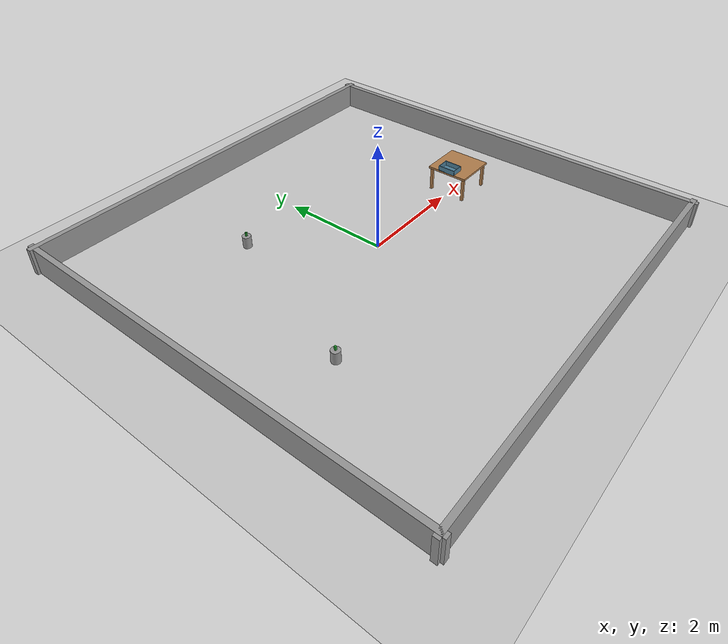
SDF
<?xml version="1.0" ?>
<sdf version="1.7">
  <world name="mobiarm_world">

    <!-- Standard lighting and ground -->
    <include>
      <uri>model://sun</uri>
    </include>
    <include>
      <uri>model://ground_plane</uri>
    </include>

    <!-- Default ODE physics (explicit so timestep matches ros2_control) -->
    <physics name="default_physics" type="ode">
      <max_step_size>0.001</max_step_size>
      <real_time_factor>1.0</real_time_factor>
      <real_time_update_rate>1000</real_time_update_rate>
      <ode>
        <solver>
          <type>quick</type>
          <iters>100</iters>          <!-- default ~20-50; this is the #1 fix for jitter -->
          <sor>1.3</sor>
        </solver>
        <constraints>
          <cfm>0.0</cfm>
          <erp>0.2</erp>
          <contact_max_correcting_vel>100.0</contact_max_correcting_vel>
          <contact_surface_layer>0.001</contact_surface_layer>
        </constraints>
      </ode>
    </physics>

    <plugin name="gazebo_link_attacher" filename="libgazebo_link_attacher.so"/>

    <!-- ================= Simple table =================
         Static model at x=1.0 (1 m in front of the robot). One link with a
         tabletop (top surface at z=0.50) and four legs. -->
    <model name="table">
      <static>true</static>
      <pose>2.5 0 0 0 0 0</pose>
      <link name="link">

        <!-- tabletop: 0.8 x 0.8 x 0.04, centred so its top face is at z=0.50 -->
        <collision name="top_col">
          <pose>0 0 0.48 0 0 0</pose>
          <geometry><box><size>0.8 0.8 0.04</size></box></geometry>
        </collision>
        <visual name="top_vis">
          <pose>0 0 0.48 0 0 0</pose>
          <geometry><box><size>0.8 0.8 0.04</size></box></geometry>
          <material>
            <script>
              <uri>file://media/materials/scripts/gazebo.material</uri>
              <name>Gazebo/Wood</name>
            </script>
          </material>
        </visual>

        <!-- four legs: 0.05 x 0.05 x 0.46, from the floor up to the tabletop -->
        <collision name="leg1_col">
          <pose> 0.35  0.35 0.23 0 0 0</pose>
          <geometry><box><size>0.05 0.05 0.46</size></box></geometry>
        </collision>
        <visual name="leg1_vis">
          <pose> 0.35  0.35 0.23 0 0 0</pose>
          <geometry><box><size>0.05 0.05 0.46</size></box></geometry>
          <material><script><uri>file://media/materials/scripts/gazebo.material</uri><name>Gazebo/Wood</name></script></material>
        </visual>

        <collision name="leg2_col">
          <pose> 0.35 -0.35 0.23 0 0 0</pose>
          <geometry><box><size>0.05 0.05 0.46</size></box></geometry>
        </collision>
        <visual name="leg2_vis">
          <pose> 0.35 -0.35 0.23 0 0 0</pose>
          <geometry><box><size>0.05 0.05 0.46</size></box></geometry>
          <material><script><uri>file://media/materials/scripts/gazebo.material</uri><name>Gazebo/Wood</name></script></material>
        </visual>

        <collision name="leg3_col">
          <pose>-0.35  0.35 0.23 0 0 0</pose>
          <geometry><box><size>0.05 0.05 0.46</size></box></geometry>
        </collision>
        <visual name="leg3_vis">
          <pose>-0.35  0.35 0.23 0 0 0</pose>
          <geometry><box><size>0.05 0.05 0.46</size></box></geometry>
          <material><script><uri>file://media/materials/scripts/gazebo.material</uri><name>Gazebo/Wood</name></script></material>
        </visual>

        <collision name="leg4_col">
          <pose>-0.35 -0.35 0.23 0 0 0</pose>
          <geometry><box><size>0.05 0.05 0.46</size></box></geometry>
        </collision>
        <visual name="leg4_vis">
          <pose>-0.35 -0.35 0.23 0 0 0</pose>
          <geometry><box><size>0.05 0.05 0.46</size></box></geometry>
          <material><script><uri>file://media/materials/scripts/gazebo.material</uri><name>Gazebo/Wood</name></script></material>
        </visual>

      </link>
    </model>

    <model name="bin">
      <static>true</static>
      <pose>2.21 0 0.5 0 0 0</pose>
      <link name="link">
        <!-- floor -->
        <collision name="floor_col">
          <pose>0 0 0.005 0 0 0</pose>
          <geometry><box><size>0.24 0.34 0.01</size></box></geometry>
        </collision>
        <visual name="floor_vis">
          <pose>0 0 0.005 0 0 0</pose>
          <geometry><box><size>0.24 0.34 0.01</size></box></geometry>
          <material><ambient>0.2 0.4 0.5 1</ambient><diffuse>0.3 0.5 0.6 1</diffuse></material>
        </visual>
        <!-- +x wall -->
        <collision name="wall_px_col">
          <pose>0.115 0 0.05 0 0 0</pose>
          <geometry><box><size>0.01 0.34 0.1</size></box></geometry>
        </collision>
        <visual name="wall_px_vis">
          <pose>0.115 0 0.05 0 0 0</pose>
          <geometry><box><size>0.01 0.34 0.1</size></box></geometry>
          <material><ambient>0.2 0.4 0.5 1</ambient><diffuse>0.3 0.5 0.6 1</diffuse></material>
        </visual>
        <!-- -x wall -->
        <collision name="wall_nx_col">
          <pose>-0.115 0 0.05 0 0 0</pose>
          <geometry><box><size>0.01 0.34 0.1</size></box></geometry>
        </collision>
        <visual name="wall_nx_vis">
          <pose>-0.115 0 0.05 0 0 0</pose>
          <geometry><box><size>0.01 0.34 0.1</size></box></geometry>
          <material><ambient>0.2 0.4 0.5 1</ambient><diffuse>0.3 0.5 0.6 1</diffuse></material>
        </visual>
        <!-- +y wall -->
        <collision name="wall_py_col">
          <pose>0 0.165 0.05 0 0 0</pose>
          <geometry><box><size>0.24 0.01 0.1</size></box></geometry>
        </collision>
        <visual name="wall_py_vis">
          <pose>0 0.165 0.05 0 0 0</pose>
          <geometry><box><size>0.24 0.01 0.1</size></box></geometry>
          <material><ambient>0.2 0.4 0.5 1</ambient><diffuse>0.3 0.5 0.6 1</diffuse></material>
        </visual>
        <!-- -y wall -->
        <collision name="wall_ny_col">
          <pose>0 -0.165 0.05 0 0 0</pose>
          <geometry><box><size>0.24 0.01 0.1</size></box></geometry>
        </collision>
        <visual name="wall_ny_vis">
          <pose>0 -0.165 0.05 0 0 0</pose>
          <geometry><box><size>0.24 0.01 0.1</size></box></geometry>
          <material><ambient>0.2 0.4 0.5 1</ambient><diffuse>0.3 0.5 0.6 1</diffuse></material>
        </visual>
      </link>
    </model>

    <model name="cube_stand">
      <static>true</static>
      <pose>-2.5 -1.2 0 0 0 0</pose>
      <link name="link">
        <collision name="stool_col">
          <pose>0 0 0.1125 0 0 0</pose>
          <geometry><cylinder><radius>0.08</radius><length>0.225</length></cylinder></geometry>
        </collision>
        <visual name="stool_vis">
          <pose>0 0 0.1125 0 0 0</pose>
          <geometry><cylinder><radius>0.08</radius><length>0.225</length></cylinder></geometry>
          <material><script><uri>file://media/materials/scripts/gazebo.material</uri><name>Gazebo/Grey</name></script></material>
        </visual>
      </link>
    </model>

     <model name="cube_stand2">
      <static>true</static>
      <pose>-1.4 1.8 0 0 0 0</pose>
      <link name="link">
        <collision name="stool_col">
          <pose>0 0 0.1125 0 0 0</pose>
          <geometry><cylinder><radius>0.08</radius><length>0.225</length></cylinder></geometry>
        </collision>
        <visual name="stool_vis">
          <pose>0 0 0.1125 0 0 0</pose>
          <geometry><cylinder><radius>0.08</radius><length>0.225</length></cylinder></geometry>
          <material><script><uri>file://media/materials/scripts/gazebo.material</uri><name>Gazebo/Grey</name></script></material>
        </visual>
      </link>
    </model>

    <model name="green_cube_1">
      <static>false</static>
      <pose>-1.4 1.8 0.24 0 0 0</pose>
      <link name="link">
        <inertial>
          <mass>0.05</mass>
          <inertia>
            <ixx>7.5e-6</ixx><iyy>7.5e-6</iyy><izz>7.5e-6</izz>
            <ixy>0</ixy><ixz>0</ixz><iyz>0</iyz>
          </inertia>
        </inertial>
        <collision name="cube_col">
          <geometry><box><size>0.03 0.03 0.12</size></box></geometry>
        </collision>
        <visual name="cube_vis">
          <geometry><box><size>0.03 0.03 0.12</size></box></geometry>
          <material><script><uri>file://media/materials/scripts/gazebo.material</uri><name>Gazebo/Green</name></script></material>
        </visual>
      </link>
    </model>

    <model name="green_cube_2">
      <static>false</static>
      <pose>-2.5 -1.2 0.24 0 0 0</pose>
      <link name="link">
        <inertial>
          <mass>0.05</mass>
          <inertia>
            <ixx>7.5e-6</ixx><iyy>7.5e-6</iyy><izz>7.5e-6</izz>
            <ixy>0</ixy><ixz>0</ixz><iyz>0</iyz>
          </inertia>
        </inertial>
        <collision name="cube_col">
          <geometry><box><size>0.03 0.03 0.12</size></box></geometry>
        </collision>
        <visual name="cube_vis">
          <geometry><box><size>0.03 0.03 0.12</size></box></geometry>
          <material><script><uri>file://media/materials/scripts/gazebo.material</uri><name>Gazebo/Green</name></script></material>
        </visual>
      </link>
    </model>

    <model name="walls">
      <static>true</static>
      <pose>0 0 0 0 0 0</pose>
      <link name="link">
        <!-- north (+y) and south (-y): run along x -->
        <collision name="north_col"><pose>0  4 0.25 0 0 0</pose><geometry><box><size>8.2 0.1 0.5</size></box></geometry></collision>
        <visual    name="north_vis"><pose>0  4 0.25 0 0 0</pose><geometry><box><size>8.2 0.1 0.5</size></box></geometry>
          <material><script><uri>file://media/materials/scripts/gazebo.material</uri><name>Gazebo/Grey</name></script></material></visual>

        <collision name="south_col"><pose>0 -4 0.25 0 0 0</pose><geometry><box><size>8.2 0.1 0.5</size></box></geometry></collision>
        <visual    name="south_vis"><pose>0 -4 0.25 0 0 0</pose><geometry><box><size>8.2 0.1 0.5</size></box></geometry>
          <material><script><uri>file://media/materials/scripts/gazebo.material</uri><name>Gazebo/Grey</name></script></material></visual>

        <!-- east (+x) and west (-x): run along y -->
        <collision name="east_col"><pose> 4 0 0.25 0 0 0</pose><geometry><box><size>0.1 8.2 0.5</size></box></geometry></collision>
        <visual    name="east_vis"><pose> 4 0 0.25 0 0 0</pose><geometry><box><size>0.1 8.2 0.5</size></box></geometry>
          <material><script><uri>file://media/materials/scripts/gazebo.material</uri><name>Gazebo/Grey</name></script></material></visual>

        <collision name="west_col"><pose>-4 0 0.25 0 0 0</pose><geometry><box><size>0.1 8.2 0.5</size></box></geometry></collision>
        <visual    name="west_vis"><pose>-4 0 0.25 0 0 0</pose><geometry><box><size>0.1 8.2 0.5</size></box></geometry>
          <material><script><uri>file://media/materials/scripts/gazebo.material</uri><name>Gazebo/Grey</name></script></material></visual>
      </link>
    </model>

  </world>
</sdf>
